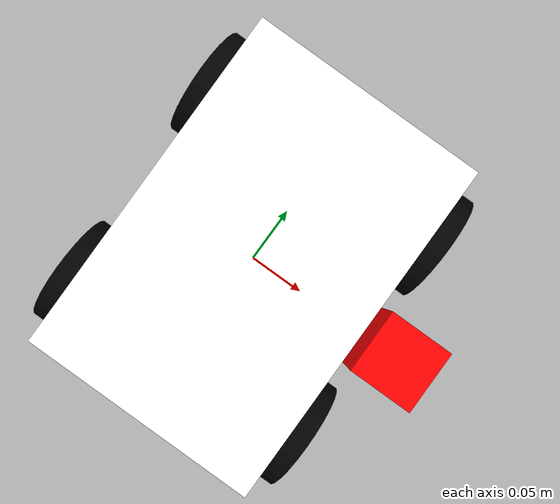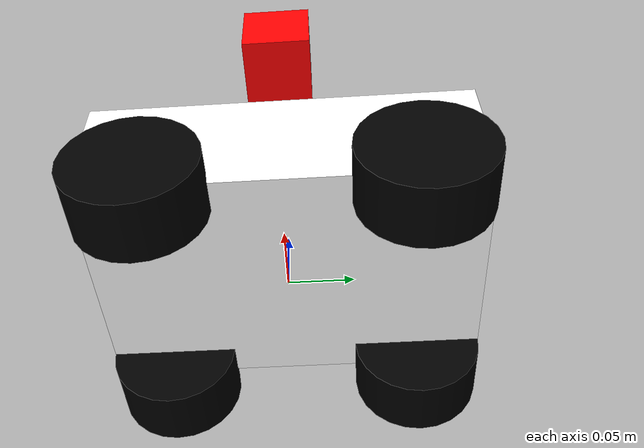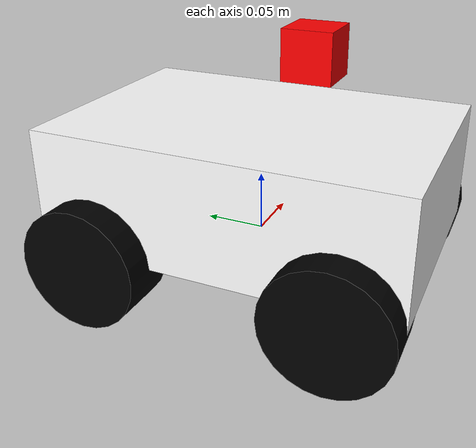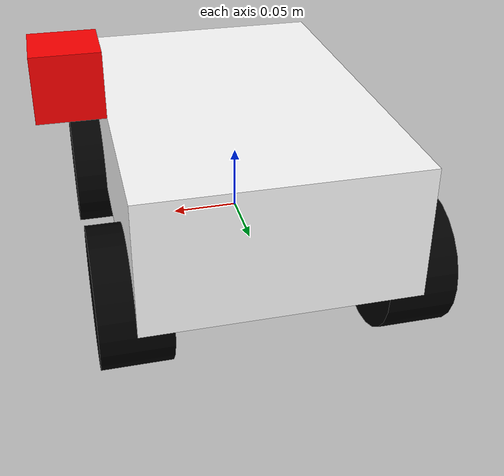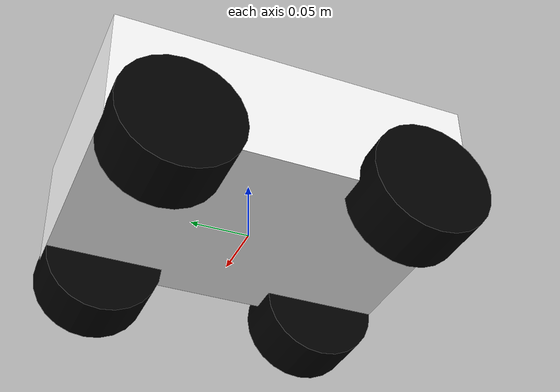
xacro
<?xml version="1.0"?>
<robot xmlns:xacro="http://www.ros.org/wiki/xacro" name="robot5_xacro">
<xacro:include filename="$(find robot1_description)/urdf/robot5.gazebo"/>

	<xacro:property name="length_wheel" value="0.05" />
	<xacro:property name="radius_wheel" value="0.05" />

	<xacro:macro name="default_inertial" params="mass">
               <inertial>
                       <mass value="${mass}" />
                       <inertia ixx="1.0" ixy="0.0" ixz="0.0"
                                iyy="1.0" iyz="0.0"
                                izz="1.0" />
               </inertial>
	</xacro:macro>

        <xacro:macro name="wheel_geometry">
		<geometry>
       			<cylinder length="${length_wheel}" radius="${radius_wheel}"/>
     		</geometry>
	</xacro:macro>

	<link name="base_link">
   		<visual>
     			<geometry>
       				<box size="0.2 .3 .1"/>
     			</geometry>
			<origin rpy="0 0 0" xyz="0 0 0.05"/>
			<material name="white">
				<color rgba="1 1 1 1"/>
			</material>
   		</visual>
		<collision>
			<geometry>
       				<box size="0.2 .3 0.1"/>
			</geometry>
		</collision>
		<xacro:default_inertial mass="10"/>

 	</link>

 	<link name="wheel_1">
   		<visual>
     			<xacro:wheel_geometry />
			<origin rpy="0 1.5707 0" xyz="0.0 0.0 0"/>
   			<material name="black">
				<color rgba="0 0 0 1"/>
			</material>
		</visual>
		<collision>
			<xacro:wheel_geometry />
		</collision>
		<xacro:default_inertial mass="1"/>
 	</link>

 	<link name="wheel_2">
   		<visual>
     			<xacro:wheel_geometry />
			<origin rpy="0 1.5707 0" xyz="-0.0 0.0 0"/>
   			<material name="black"/>
   		</visual>
		<collision>
			<xacro:wheel_geometry />
		</collision>
		<xacro:default_inertial mass="1"/>
 	</link>

 	<link name="wheel_3">
   		<visual>
 			<xacro:wheel_geometry />
			<origin rpy="0 1.5707 0" xyz="0.0 -0.0 0"/>
   			<material name="black"/>
   		</visual>
		<collision>
			<xacro:wheel_geometry />
		</collision>
		<xacro:default_inertial mass="1"/>
 	</link>

 	<link name="wheel_4">
   		<visual>
  			 <xacro:wheel_geometry />
			<origin rpy="0 1.5707 0" xyz="-0.0 -0.0 0"/>
   			<material name="black"/>
   		</visual>
		<collision>
			<xacro:wheel_geometry />
		</collision>
		<xacro:default_inertial mass="1"/>
 	</link>

 	<joint name="base_to_wheel1" type="continuous">
		<parent link="base_link"/>
		<child link="wheel_1"/>
                <axis xyz="1 0 0"/>
		<origin xyz="0.1 0.1 0"/>
	</joint>

	<joint name="base_to_wheel2" type="continuous">
		<parent link="base_link"/>
		<child link="wheel_2"/>
                <axis xyz="1 0 0"/>
		<origin xyz="-0.1 0.1 0"/>
	</joint>

	<joint name="base_to_wheel3" type="continuous">
		<parent link="base_link"/>
		<child link="wheel_3"/>
                <axis xyz="1 0 0"/>
		<origin xyz="0.1 -0.1 0"/>
	</joint>

	<joint name="base_to_wheel4" type="continuous">
		<parent link="base_link"/>
		<child link="wheel_4"/>
                <axis xyz="1 0 0"/>
		<origin xyz="-0.1 -0.1 0"/>
	</joint>

        <!-- Camera -->
	  <link name="camera_link">
	    <collision>
	      <origin xyz="0 0 0" rpy="0 0 0"/>
	      <geometry>
		<box size="0.05 0.05 0.05"/>
	      </geometry>
	    </collision>

	    <visual>
	      <origin xyz="0 0 0" rpy="0 0 0"/>
	      <geometry>
		<box size="0.05 0.05 0.05"/>
	      </geometry>
	      <material name="red">
		<color rgba="1 0 0 1"/>
	      </material>
	    </visual>

	    <inertial>
	      <mass value="1e-5" />
	      <origin xyz="0 0 0" rpy="0 0 0"/>
	      <inertia ixx="1e-6" ixy="0" ixz="0" iyy="1e-6" iyz="0" izz="1e-6" />
	    </inertial>
	  </link>

    	 <joint name="camera_joint" type="fixed">
	    <axis xyz="0 1 0" />
	    <origin xyz="0.125 0 0.125" rpy="0 0 0"/>
	    <parent link="base_link"/>
	    <child link="camera_link"/>
	  </joint>

	<gazebo>
	  <plugin name="skid_steer_drive_controller" filename="libgazebo_ros_skid_steer_drive.so">
	    <updateRate>100.0</updateRate>
	    <robotNamespace>/robot</robotNamespace>
	    <leftFrontJoint>base_to_wheel1</leftFrontJoint>
	    <rightFrontJoint>base_to_wheel3</rightFrontJoint>
	    <leftRearJoint>base_to_wheel2</leftRearJoint>
	    <rightRearJoint>base_to_wheel4</rightRearJoint>
	    <wheelDiameter>0.1</wheelDiameter>
	    <robotBaseFrame>base_link</robotBaseFrame>
	    <torque>2</torque>
	    <topicName>cmd_vel</topicName>
	    <broadcastTF>0</broadcastTF>
	  </plugin>
	</gazebo>

</robot>
